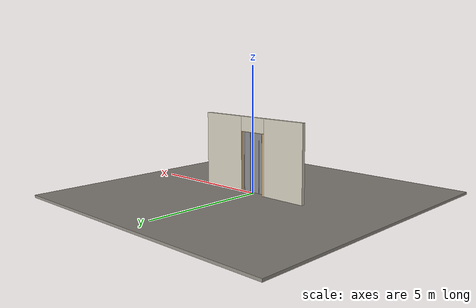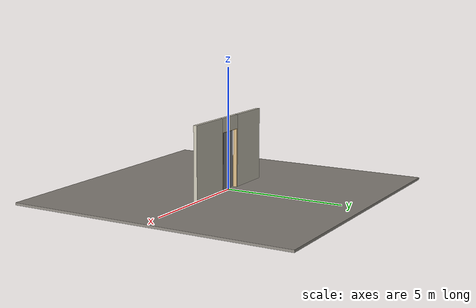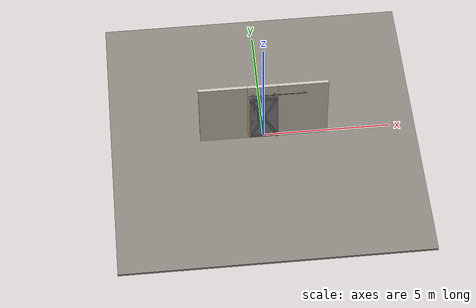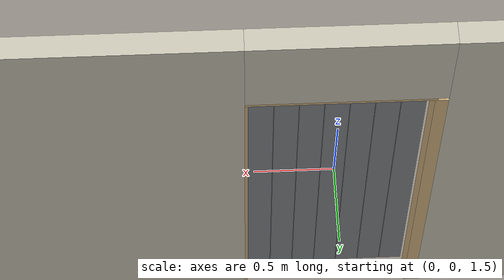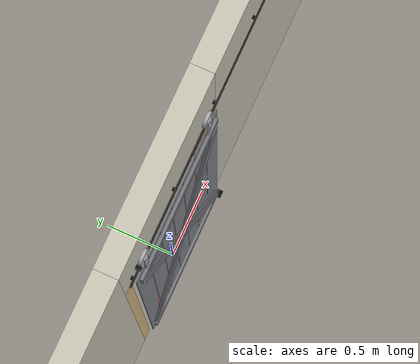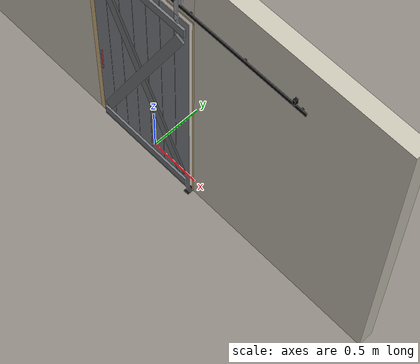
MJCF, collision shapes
<?xml version="1.0" ?>
<mujoco model="db0167_sliding_single_full">
  <compiler angle="radian" meshdir="../../hardware" texturedir="../../textures" autolimits="true" inertiafromgeom="false"/>
  <option timestep="0.002" integrator="implicitfast" cone="elliptic" impratio="10" noslip_iterations="3">
    <flag multiccd="enable"/>
  </option>
  <size memory="16M"/>
  <default>
    <geom condim="4" solref="0.005 1" solimp="0.95 0.99 0.001"/>
    <joint solreflimit="0.005 1" solimplimit="0.95 0.99 0.001"/>
    <tendon solreflimit="0.005 1"/>
    <equality solref="0.002 1"/>
  </default>
  <visual>
    <headlight ambient="0.4 0.4 0.4" diffuse="0.7 0.7 0.7" specular="0.2 0.2 0.2"/>
    <quality shadowsize="4096"/>
    <map znear="0.01" zfar="60"/>
  </visual>
  <asset>
    <mesh name="pull_2b47e55ff8" file="pull_2b47e55ff8.obj"/>
    <material name="mat_floor" rgba="0.55 0.53 0.5 1" specular="0.2" shininess="0.15" reflectance="0"/>
    <material name="mat_wall" rgba="0.78 0.76 0.7 1" specular="0.2" shininess="0.1" reflectance="0"/>
    <material name="mat_frame" rgba="0.82 0.7 0.5 1" specular="0.2" shininess="0.45" reflectance="0"/>
    <material name="mat_track" rgba="0.05 0.05 0.05 1" specular="0.38" shininess="0.3" reflectance="0.12"/>
    <material name="mat_leaf" rgba="0.5 0.51 0.53 1" specular="0.23" shininess="0.63" reflectance="0.02"/>
    <material name="mat_leaf_brace" rgba="0.45 0.459 0.477 1" specular="0.2" shininess="0.2" reflectance="0"/>
    <material name="mat_roller" rgba="0.65 0.66 0.68 1" specular="0.74" shininess="0.5" reflectance="0.36"/>
    <material name="mat_op_black_matte_metal" rgba="0.05 0.05 0.05 1" specular="0.38" shininess="0.3" reflectance="0.12"/>
    <material name="mat_hook" rgba="0.75 0.76 0.77 1" specular="0.8" shininess="0.65" reflectance="0.4"/>
    <texture name="skybox" type="skybox" builtin="gradient" rgb1="0.6 0.7 0.85" rgb2="0.9 0.92 0.95" width="256" height="256"/>
  </asset>
  <worldbody>
    <light name="sun" pos="1.5 -2.5 4" dir="-0.3 0.5 -0.8" directional="true" diffuse="0.8 0.8 0.8" specular="0.3 0.3 0.3" castshadow="true"/>
    <light name="fill" pos="-1.5 2.5 3" dir="0.3 -0.5 -0.7" directional="true" diffuse="0.35 0.35 0.4" castshadow="false"/>
    <camera name="robot_view" pos="0 -2.89375 2.02025" xyaxes="1 0 0 0 0.26963 0.962964" fovy="52"/>
    <camera name="far_view" pos="0 2.89375 2.02025" xyaxes="-1 0 0 0 -0.26963 0.962964" fovy="52"/>
    <camera name="iso" pos="2.19925 -2.43075 2.48325" xyaxes="0.741536 0.670913 0 -0.242917 0.268487 0.932151" fovy="46"/>
    <camera name="detail_handle" pos="-0.2635 -0.9435 1.28" xyaxes="0.97561 0.219512 0 -0.070934 0.315262 0.94635" fovy="38"/>
    <geom name="floor" type="box" size="6 6 0.05" pos="0 0 -0.05" material="mat_floor" group="0" contype="1" conaffinity="1" friction="0.8 0.005 0.0001" density="2400"/>
    <geom name="wall_left" type="box" size="0.93875 0.0725 1.51" pos="-1.56125 0 1.51" material="mat_wall" group="0" contype="1" conaffinity="1" friction="0.6 0.005 0.0001" density="800"/>
    <geom name="wall_right" type="box" size="0.96875 0.0725 1.51" pos="1.53125 0 1.51" material="mat_wall" group="0" contype="1" conaffinity="1" friction="0.6 0.005 0.0001" density="800"/>
    <geom name="wall_header" type="box" size="0.5925 0.0725 0.2905" pos="-0.03 0 2.7295" material="mat_wall" group="0" contype="1" conaffinity="1" friction="0.6 0.005 0.0001" density="800"/>
    <geom name="jamb_r" type="box" size="0.0095 0.0725 1.21" pos="0.553 0 1.21" material="mat_frame" group="0" contype="1" conaffinity="1" friction="0.6 0.005 0.0001" density="300"/>
    <geom name="jamb_head" type="box" size="0.5625 0.0725 0.0095" pos="0 0 2.4295" material="mat_frame" group="0" contype="1" conaffinity="1" friction="0.6 0.005 0.0001" density="300"/>
    <geom name="flat_track" type="box" size="1.117 0.004 0.02" pos="0.5335 -0.0925 2.54" material="mat_track" group="0" contype="1" conaffinity="1" friction="0.6 0.005 0.0001" density="7850"/>
    <geom name="track_standoff_0" type="cylinder" size="0.012 0.008" pos="-0.5335 -0.0805 2.54" quat="0.707107 -0.707107 0 0" material="mat_track" group="1" contype="0" conaffinity="0" density="7850"/>
    <geom name="track_standoff_1" type="cylinder" size="0.012 0.008" pos="0 -0.0805 2.54" quat="0.707107 -0.707107 0 0" material="mat_track" group="1" contype="0" conaffinity="0" density="7850"/>
    <geom name="track_standoff_2" type="cylinder" size="0.012 0.008" pos="0.5335 -0.0805 2.54" quat="0.707107 -0.707107 0 0" material="mat_track" group="1" contype="0" conaffinity="0" density="7850"/>
    <geom name="track_standoff_3" type="cylinder" size="0.012 0.008" pos="1.067 -0.0805 2.54" quat="0.707107 -0.707107 0 0" material="mat_track" group="1" contype="0" conaffinity="0" density="7850"/>
    <geom name="track_standoff_4" type="cylinder" size="0.012 0.008" pos="1.6005 -0.0805 2.54" quat="0.707107 -0.707107 0 0" material="mat_track" group="1" contype="0" conaffinity="0" density="7850"/>
    <geom name="leaf_track_stop_l" type="box" size="0.012 0.016 0.027" pos="-0.4755 -0.0925 2.585" material="mat_track" group="0" contype="1" conaffinity="1" friction="0.6 0.005 0.0001" density="7850"/>
    <geom name="leaf_track_stop_r" type="box" size="0.012 0.016 0.027" pos="1.5425 -0.0925 2.585" material="mat_track" group="0" contype="1" conaffinity="1" friction="0.6 0.005 0.0001" density="7850"/>
    <geom name="jamb_latch_0" type="box" size="0.0395 0.0725 1.21" pos="-0.583 0 1.21" material="mat_frame" group="0" contype="1" conaffinity="1" friction="0.6 0.005 0.0001" density="300"/>
    <geom name="floor_guide_n" type="box" size="0.028 0.004 0.009" pos="0.5335 -0.1035 0.009" material="mat_track" group="0" contype="1" conaffinity="1" friction="0.6 0.005 0.0001" density="7850"/>
    <geom name="floor_guide_n_foot" type="box" size="0.028 0.018 0.002" pos="0.5335 -0.1175 0.002" material="mat_track" group="0" contype="1" conaffinity="1" friction="0.6 0.005 0.0001" density="7850"/>
    <geom name="floor_guide_p" type="box" size="0.028 0.004 0.009" pos="0.5335 -0.0875 0.009" material="mat_track" group="0" contype="1" conaffinity="1" friction="0.6 0.005 0.0001" density="7850"/>
    <geom name="floor_guide_p_foot" type="box" size="0.028 0.018 0.002" pos="0.5335 -0.0735 0.002" material="mat_track" group="0" contype="1" conaffinity="1" friction="0.6 0.005 0.0001" density="7850"/>
    <site name="approach_point" pos="0 -1.5 0" quat="1 0 0 0" size="0.05" rgba="0.2 0.9 0.2 0.5" group="4"/>
    <site name="goal_point" pos="0 1.5 0" quat="1 0 0 0" size="0.05" rgba="0.2 0.9 0.2 0.5" group="4"/>
    <site name="door_plane_center" pos="0 0 1.21" quat="1 0 0 0" size="0.02" rgba="0.2 0.9 0.2 0.5" group="4"/>
    <body name="leaf" pos="0 -0.0955 0">
      <inertial pos="-0.00175 -0.000221 1.255236" mass="121.31368" quat="0.500456 -0.500073 -0.499901 -0.499569" diaginertia="11.864898622 63.076562014 74.938544791"/>
      <joint name="leaf_slide" type="slide" axis="1 0 0" limited="true" range="0 1.067" damping="8.065684" frictionloss="23.793616" armature="0.5"/>
      <geom name="leaf_slab" type="box" size="0.5335 0.003 1.2" pos="0 0 1.212" material="mat_leaf" group="0" contype="1" conaffinity="1" friction="0.45 0.005 0.0001" density="1"/>
      <geom name="leaf_plank_gap_1" type="box" size="0.002 0.004 1.19" pos="-0.381071 0 1.212" material="mat_leaf_brace" group="1" contype="0" conaffinity="0" density="1"/>
      <geom name="leaf_plank_gap_2" type="box" size="0.002 0.004 1.19" pos="-0.228643 0 1.212" material="mat_leaf_brace" group="1" contype="0" conaffinity="0" density="1"/>
      <geom name="leaf_plank_gap_3" type="box" size="0.002 0.004 1.19" pos="-0.076214 0 1.212" material="mat_leaf_brace" group="1" contype="0" conaffinity="0" density="1"/>
      <geom name="leaf_plank_gap_4" type="box" size="0.002 0.004 1.19" pos="0.076214 0 1.212" material="mat_leaf_brace" group="1" contype="0" conaffinity="0" density="1"/>
      <geom name="leaf_plank_gap_5" type="box" size="0.002 0.004 1.19" pos="0.228643 0 1.212" material="mat_leaf_brace" group="1" contype="0" conaffinity="0" density="1"/>
      <geom name="leaf_plank_gap_6" type="box" size="0.002 0.004 1.19" pos="0.381071 0 1.212" material="mat_leaf_brace" group="1" contype="0" conaffinity="0" density="1"/>
      <geom name="leaf_batten_13" type="box" size="0.5035 0.01 0.045" pos="0 -0.013 0.132" material="mat_leaf_brace" group="1" contype="0" conaffinity="0" density="1"/>
      <geom name="leaf_batten_229" type="box" size="0.5035 0.01 0.045" pos="0 -0.013 2.292" material="mat_leaf_brace" group="1" contype="0" conaffinity="0" density="1"/>
      <geom name="leaf_brace_z" type="box" size="1.073313 0.01 0.045" pos="0 -0.013 1.212" quat="0.844578 0 -0.535432 0" material="mat_leaf_brace" group="1" contype="0" conaffinity="0" density="1"/>
      <geom name="leaf_brace_x" type="box" size="1.073313 0.01 0.045" pos="0 -0.013 1.212" quat="0.844578 0 0.535432 0" material="mat_leaf_brace" group="1" contype="0" conaffinity="0" density="1"/>
      <geom name="leaf_hanger_wheel_0" type="cylinder" size="0.05 0.01" pos="-0.4135 0.003 2.61" quat="0.707107 -0.707107 0 0" material="mat_roller" group="1" contype="0" conaffinity="0" density="7850"/>
      <geom name="leaf_hanger_mount_0" type="box" size="0.018 0.004 0.0725" pos="-0.4135 -0.007 2.3645" material="mat_roller" group="1" contype="0" conaffinity="0" density="7850"/>
      <geom name="leaf_hanger_strap_0" type="box" size="0.018 0.004 0.0925" pos="-0.4135 -0.011 2.5295" material="mat_roller" group="1" contype="0" conaffinity="0" density="7850"/>
      <geom name="leaf_hanger_bend_0" type="box" size="0.018 0.006 0.004" pos="-0.4135 -0.009 2.437" material="mat_roller" group="1" contype="0" conaffinity="0" density="7850"/>
      <geom name="leaf_hanger_axle_0" type="cylinder" size="0.006 0.021" pos="-0.4135 -0.004 2.61" quat="0.707107 -0.707107 0 0" material="mat_roller" group="1" contype="0" conaffinity="0" density="7850"/>
      <geom name="leaf_hanger_bolt_0_90" type="cylinder" size="0.007 0.004" pos="-0.4135 -0.013 2.322" quat="0.707107 -0.707107 0 0" material="mat_roller" group="1" contype="0" conaffinity="0" density="7850"/>
      <geom name="leaf_hanger_bolt_0_45" type="cylinder" size="0.007 0.004" pos="-0.4135 -0.013 2.367" quat="0.707107 -0.707107 0 0" material="mat_roller" group="1" contype="0" conaffinity="0" density="7850"/>
      <geom name="leaf_hanger_wheel_1" type="cylinder" size="0.05 0.01" pos="0.4135 0.003 2.61" quat="0.707107 -0.707107 0 0" material="mat_roller" group="1" contype="0" conaffinity="0" density="7850"/>
      <geom name="leaf_hanger_mount_1" type="box" size="0.018 0.004 0.0725" pos="0.4135 -0.007 2.3645" material="mat_roller" group="1" contype="0" conaffinity="0" density="7850"/>
      <geom name="leaf_hanger_strap_1" type="box" size="0.018 0.004 0.0925" pos="0.4135 -0.011 2.5295" material="mat_roller" group="1" contype="0" conaffinity="0" density="7850"/>
      <geom name="leaf_hanger_bend_1" type="box" size="0.018 0.006 0.004" pos="0.4135 -0.009 2.437" material="mat_roller" group="1" contype="0" conaffinity="0" density="7850"/>
      <geom name="leaf_hanger_axle_1" type="cylinder" size="0.006 0.021" pos="0.4135 -0.004 2.61" quat="0.707107 -0.707107 0 0" material="mat_roller" group="1" contype="0" conaffinity="0" density="7850"/>
      <geom name="leaf_hanger_bolt_1_90" type="cylinder" size="0.007 0.004" pos="0.4135 -0.013 2.322" quat="0.707107 -0.707107 0 0" material="mat_roller" group="1" contype="0" conaffinity="0" density="7850"/>
      <geom name="leaf_hanger_bolt_1_45" type="cylinder" size="0.007 0.004" pos="0.4135 -0.013 2.367" quat="0.707107 -0.707107 0 0" material="mat_roller" group="1" contype="0" conaffinity="0" density="7850"/>
      <geom name="leaf_pull_n" type="mesh" mesh="pull_2b47e55ff8" pos="-0.4435 -0.003 1" quat="0 0 -0.707107 0.707107" material="mat_op_black_matte_metal" group="1" contype="0" conaffinity="0" density="3000"/>
      <geom name="leaf_pull_col_n" type="capsule" size="0.006 0.13" pos="-0.4435 -0.048 1" material="mat_op_black_matte_metal" group="3" contype="1" conaffinity="1" rgba="0.8 0.3 0.3 0.25" friction="0.7 0.01 0.0001" density="3000"/>
      <site name="leaf_pull_grip_n" pos="-0.4435 -0.048 1" quat="1 0 0 0" size="0.012" rgba="0.2 0.9 0.2 0.5" group="4"/>
      <site name="leaf_edge_mid" pos="-0.5335 0 1.212" quat="1 0 0 0" size="0.02" rgba="0.2 0.9 0.2 0.5" group="4"/>
    </body>
  </worldbody>
  <sensor>
    <jointpos name="leaf_slide_pos" joint="leaf_slide"/>
    <jointvel name="leaf_slide_vel" joint="leaf_slide"/>
  </sensor>
</mujoco>
